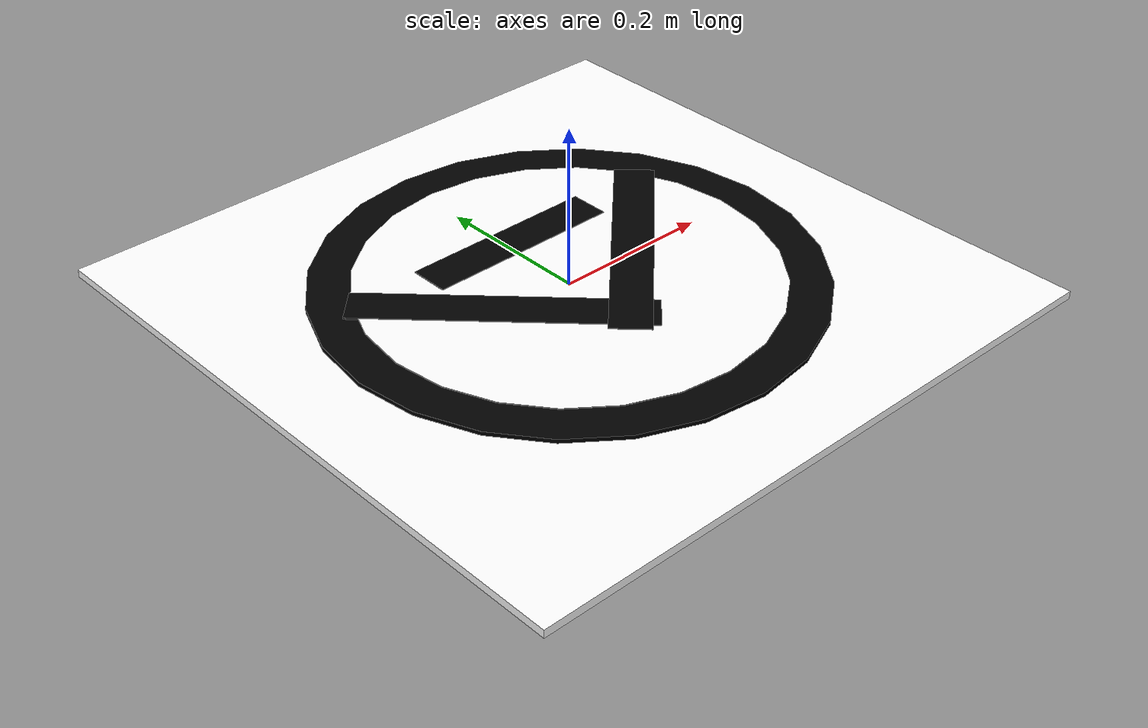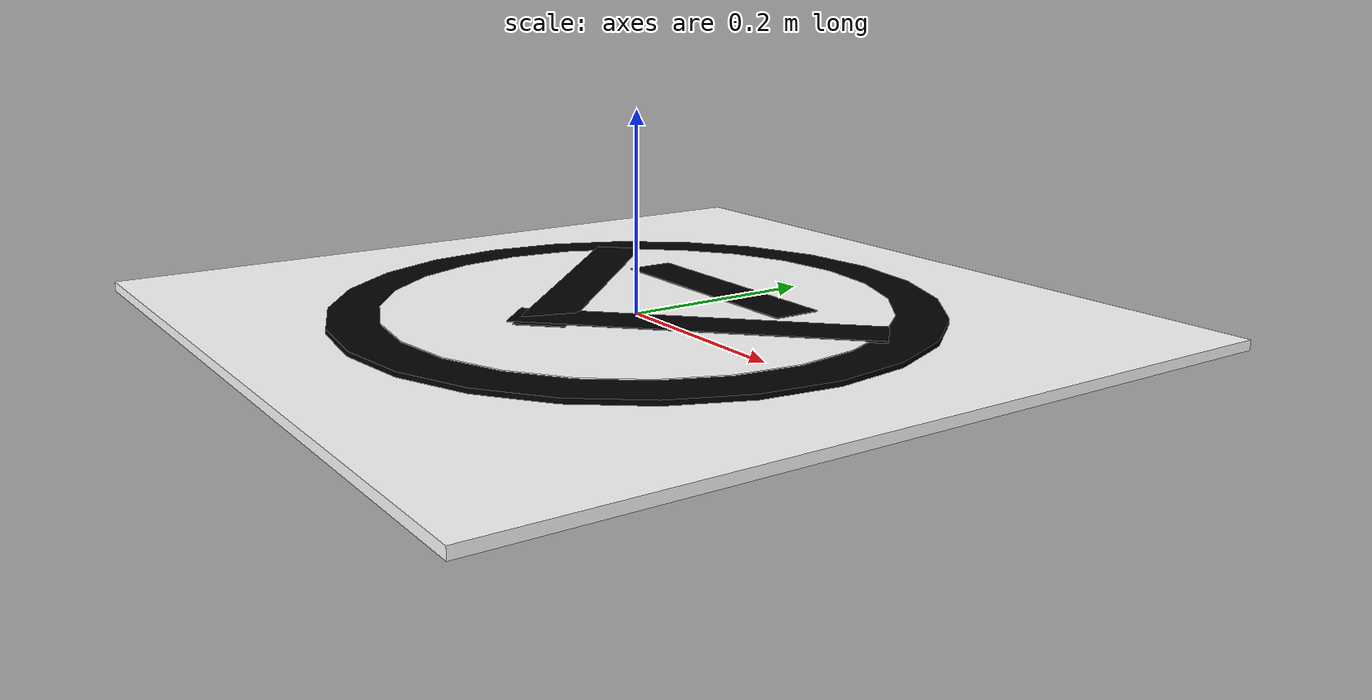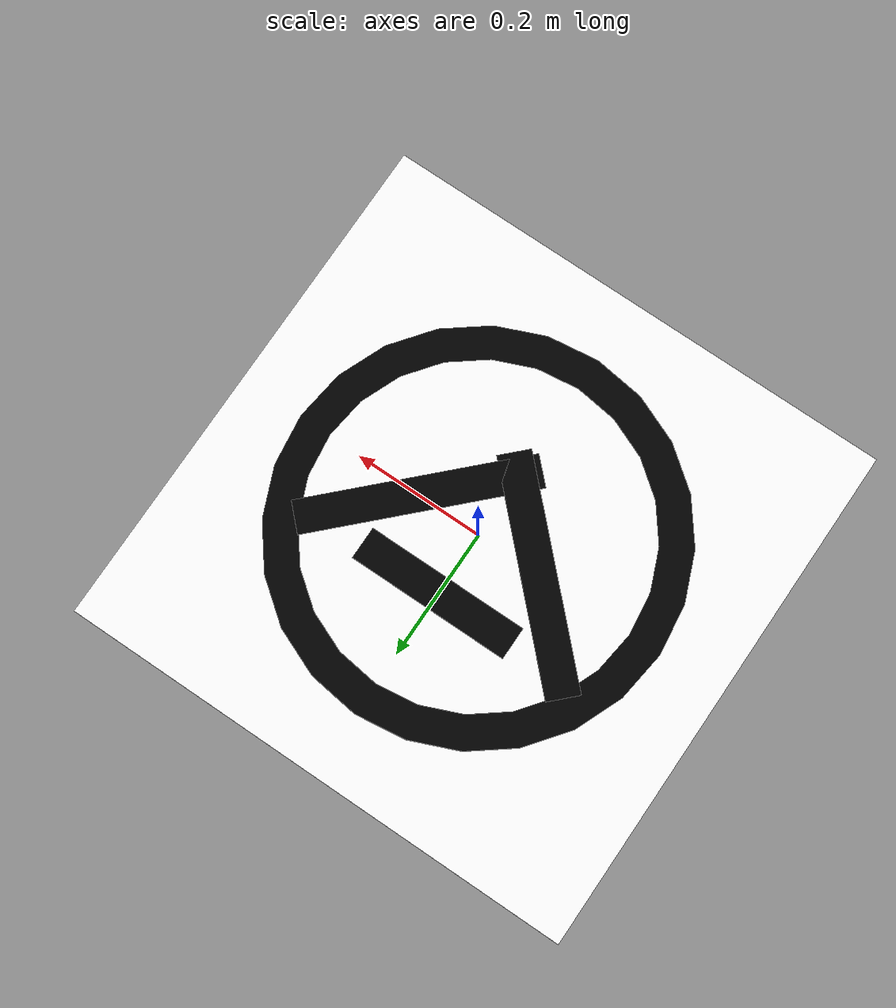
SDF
<?xml version='1.0'?>
<sdf version="1.7">
  <model name="character_A">
    <static>true</static>
    <link name="main_link">
      <!-- 白色基底 -->
      <visual name="base">
        <geometry>
          <box>
            <size>0.8 0.8 0.01</size>
          </box>
        </geometry>
        <material>
          <ambient>1 1 1 1</ambient>
          <diffuse>1 1 1 1</diffuse>
        </material>
      </visual>

      <!-- 黑色外环 -->
      <visual name="outer_ring">
        <pose>0 0 0.005 0 0 0</pose>
        <geometry>
          <cylinder>
            <radius>0.3</radius>
            <length>0.01</length>
          </cylinder>
        </geometry>
        <material>
          <ambient>0 0 0 1</ambient>
          <diffuse>0 0 0 1</diffuse>
        </material>
      </visual>

      <!-- 白色内圆 -->
      <visual name="inner_circle">
        <pose>0 0 0.006 0 0 0</pose>
        <geometry>
          <cylinder>
            <radius>0.25</radius>
            <length>0.01</length>
          </cylinder>
        </geometry>
        <material>
          <ambient>1 1 1 1</ambient>
          <diffuse>1 1 1 1</diffuse>
        </material>
      </visual>

      <!-- A字母结构 -->
      <visual name="a_left">
        <pose>-0.1 0 0.007 0 0 0.785</pose>
        <geometry>
          <box>
            <size>0.05 0.35 0.01</size>
          </box>
        </geometry>
        <material>
          <ambient>0 0 0 1</ambient>
          <diffuse>0 0 0 1</diffuse>
        </material>
      </visual>

      <visual name="a_right">
        <pose>0.1 0 0.007 0 0 -0.785</pose>
        <geometry>
          <box>
            <size>0.05 0.35 0.01</size>
          </box>
        </geometry>
        <material>
          <ambient>0 0 0 1</ambient>
          <diffuse>0 0 0 1</diffuse>
        </material>
      </visual>

      <visual name="a_crossbar">
        <pose>0 0.1 0.007 0 0 0</pose>
        <geometry>
          <box>
            <size>0.25 0.05 0.01</size>
          </box>
        </geometry>
        <material>
          <ambient>0 0 0 1</ambient>
          <diffuse>0 0 0 1</diffuse>
        </material>
      </visual>
    </link>
  </model>
</sdf>
